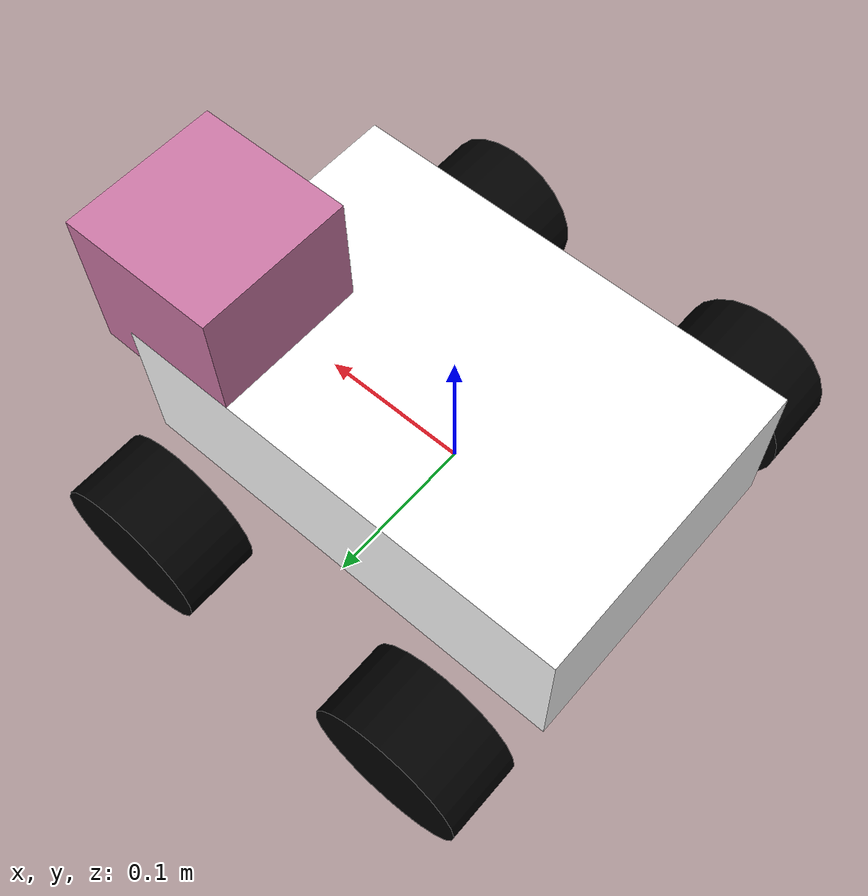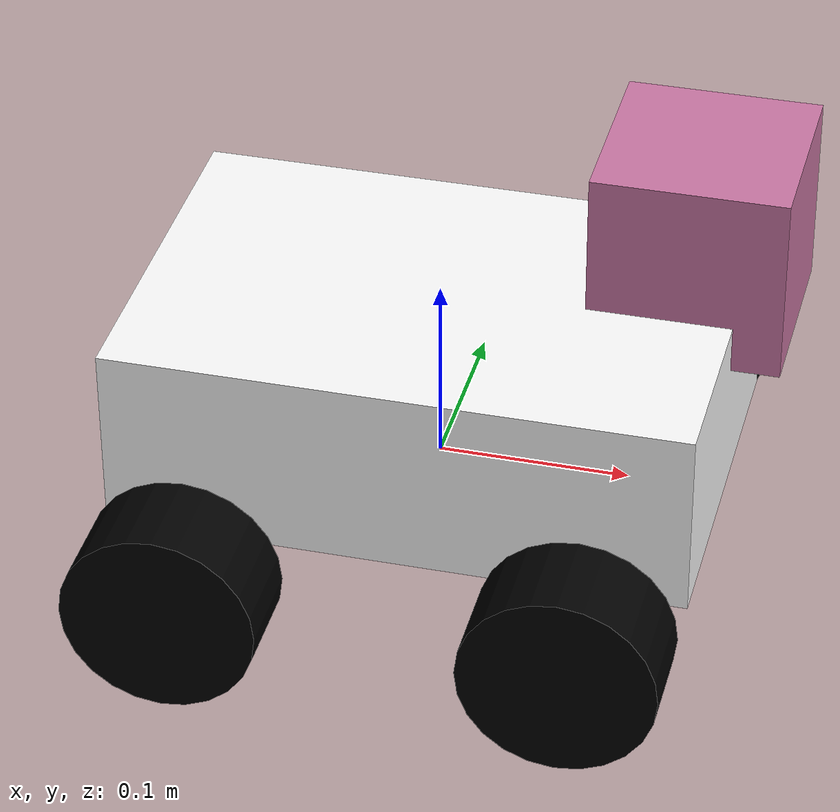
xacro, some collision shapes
<?xml version="1.0"?>
<robot  xmlns:xacro="http://www.ros.org/wiki/xacro"
    xmlns:sensor="http://playerstage.sourceforge.net/gazebo/xmlschema/#sensor"
        xmlns:controller="http://playerstage.sourceforge.net/gazebo/xmlschema/#controller"
        xmlns:interface="http://playerstage.sourceforge.net/gazebo/xmlschema/#interface"
    name="robot1_xacro">
    <xacro:property name="length_wheel" value="0.05" />
    <xacro:property name="radius_wheel" value="0.05" />
    <xacro:macro name="default_inertial" params="mass">
               <inertial>
                       <mass value="${mass}" />
                       <inertia ixx="0.0045" ixy="0" ixz="0" iyy="0.005" iyz="0" izz="0.0045" />
               </inertial>
    </xacro:macro>

    <link name="base_footprint">
        <visual>
            <geometry>
                    <box size="0.001 0.001 0.001"/>
                </geometry>
            <origin rpy="0 0 0" xyz="0 0 0"/>
        </visual>
        <xacro:default_inertial mass="0.0001"/>
    </link>

    <joint name="base_footprint_joint" type="fixed">
        <origin xyz="0 0 0" />
        <parent link="base_footprint" />
        <child link="base_link" />
    </joint>

    <link name="base_link">
        <visual>
            <geometry>
                    <box size="0.2 .3 .1"/>
                </geometry>
            <origin rpy="0 0 1.571" xyz="0 0 0.05"/>
            <material name="white">
                <color rgba="1 1 1 1"/>
            </material>
        </visual>
        <collision>
            <geometry>
                    <box size="0.2 .3 0.1"/>
            </geometry>
        </collision>
        <inertial>
            <mass value="35" />
            <inertia ixx="0.6125" ixy="0.00495" ixz="0.0031" iyy="0.6426" iyz="-0.0017" izz="0.494" />
        </inertial>
    </link>

    <link name="wheel_1">
        <visual>
                <geometry>
                    <cylinder length="${length_wheel}" radius="${radius_wheel}"/>
                </geometry>
            <origin rpy="0 0 0" xyz="0 0 0"/>
            <material name="black">
                <color rgba="0 0 0 1"/>
            </material>
        </visual>
        <collision>
            <geometry>
                    <cylinder length="${length_wheel}" radius="${radius_wheel}"/>
            </geometry>
        </collision>
        <xacro:default_inertial mass="4.3542"/>
    </link>

    <link name="wheel_2">
        <visual>
                <geometry>
                    <cylinder length="${length_wheel}" radius="${radius_wheel}"/>
                </geometry>
            <origin rpy="0 0 0" xyz="0 0 0"/>
            <material name="black"/>
        </visual>
        <collision>
            <geometry>
                    <cylinder length="${length_wheel}" radius="${radius_wheel}"/>
            </geometry>
        </collision>
        <xacro:default_inertial mass="4.3542"/>

    </link>

    <link name="wheel_3">
        <visual>
                <geometry>
                    <cylinder length="${length_wheel}" radius="${radius_wheel}"/>
                </geometry>

            <origin rpy="0 0 0" xyz="0 0 0"/>
            <material name="black"/>
        </visual>
        <collision>
            <geometry>
                    <cylinder length="${length_wheel}" radius="${radius_wheel}"/>
            </geometry>
        </collision>
        <xacro:default_inertial mass="4.3542"/>
    </link>

    <link name="wheel_4">
        <visual>
                <geometry>
                    <cylinder length="${length_wheel}" radius="${radius_wheel}"/>
                </geometry>
            <origin rpy="0 0 0" xyz="0 0 0" />
            <material name="black"/>
        </visual>
        <collision>
            <geometry>
                    <cylinder length="${length_wheel}" radius="${radius_wheel}"/>
            </geometry>
        </collision>
        <xacro:default_inertial mass="4.3542"/>

    </link>

    <link name="hokuyo_link">

        <visual>
            <origin xyz="0 0 0" rpy="0 0 0" />
            <geometry>
                <mesh filename="package://robot1_description/meshes/hokuyo.dae" />
            </geometry>
        </visual>

        <collision>
            <origin xyz="0 0 0" rpy="0 0 0" />
            <geometry>
                <box size="0.1 0.1 0.1" />
            </geometry>
        </collision>

        <inertial>
            <inertia ixx="1e-6" ixy="0" ixz="0" iyy="1e-6" iyz="0" izz="1e-6" />
            <mass value="1e-5" />
            <origin xyz="0 0 0" rpy="0 0 0 " />
        </inertial>

    </link>

    <joint name="base_to_wheel1" type="continuous">
    <parent link="base_link"/>
    <child link="wheel_1"/>
    <origin rpy="-1.5707 0 0" xyz="0.1 0.15 0"/>
    <axis xyz="0 0 1" />
    </joint>

    <joint name="base_to_wheel2" type="continuous">
    <axis xyz="0 0 1" />
    <anchor xyz="0 0 0" />
    <limit effort="100" velocity="100" />
    <parent link="base_link"/>
    <child link="wheel_2"/>
    <origin rpy="-1.5707 0 0" xyz="-0.1 0.15 0"/>
    </joint>

    <joint name="base_to_wheel3" type="continuous">
    <parent link="base_link"/>
    <axis xyz="0 0 1" />
    <child link="wheel_3"/>
    <origin rpy="-1.5707 0 0" xyz="0.1 -0.15 0"/>
    </joint>

    <joint name="base_to_wheel4" type="continuous">
    <parent link="base_link"/>
    <axis xyz="0 0 1" />
    <child link="wheel_4"/>
    <origin rpy="-1.5707 0 0" xyz="-0.1 -0.15 0"/>
    </joint>

    <joint name="base_to_laser" type="fixed">
        <parent link="base_link"/>
        <child link="hokuyo_link"/>
        <axis xyz="0 1 0" />
        <origin xyz="0.125 0.05 0.125" rpy="0 0 0"/>
    </joint>

    <!-- gazebo plugins  -->

    <!-- 1.Drive controller -->
    <gazebo>
        <plugin name="skid_steer_drive_controller" filename="libgazebo_ros_skid_steer_drive.so">
            <updateRate>100.0</updateRate>
            <robotNamespace></robotNamespace>
            <leftFrontJoint>base_to_wheel1</leftFrontJoint>
            <rightFrontJoint>base_to_wheel3</rightFrontJoint>
            <leftRearJoint>base_to_wheel2</leftRearJoint>
            <rightRearJoint>base_to_wheel4</rightRearJoint>
            <wheelSeparation>0.3</wheelSeparation>
            <wheelDiameter>0.1</wheelDiameter>

            <commandTopic>cmd_vel</commandTopic>
            <odometryTopic>odom</odometryTopic>
            <robotBaseFrame>base_footprint</robotBaseFrame>
            <odometryFrame>odom</odometryFrame>
            <torque>15</torque>
            <topicName>cmd_vel</topicName>
            <broadcastTF>1</broadcastTF>

        </plugin>
    </gazebo>

    <!-- 2.ros_control plugin -->
    <gazebo>
        <plugin name="gazebo_ros_control" filename="libgazebo_ros_control.so">
        <robotNamespace>/robot</robotNamespace>

        </plugin>
    </gazebo>

    <!-- 3.laser sensor -->

    <gazebo reference="hokuyo_link">
        <sensor type="ray" name="head_hokuyo_sensor" >
            <pose>0 0 0 0 0 0</pose>
            <visualize>false</visualize>
            <update_rate>40</update_rate>
            <ray>
                <scan>
                    <horizontal>
                        <samples>720</samples>
                        <resolution>1</resolution>
                        <min_angle>-3.14159</min_angle>
                        <max_angle>3.14159</max_angle>
                    </horizontal>
                </scan>
                <range>
                    <min>0.1</min>
                    <max>30</max>
                    <resolution>0.01</resolution>
                </range>
                <noise>
                    <type>gaussian</type>
                    <mean>0.0</mean>
                    <stddev>0.01</stddev>
                </noise>
            </ray>
            <plugin name="gazebo_ros_head_hokuyo_controller" filename="libgazebo_ros_laser.so">
                <topicName>/scan</topicName>
                <frameName>hokuyo_link</frameName>
            </plugin>
        </sensor>
    </gazebo>

    <gazebo reference="base_link">
        <material>Gazebo/Orange</material>
    </gazebo>

    <gazebo reference="wheel_1">
        <material>Gazebo/Black</material>
    </gazebo>

    <gazebo reference="wheel_2">
        <material>Gazebo/Black</material>
    </gazebo>

    <gazebo reference="wheel_3">
        <material>Gazebo/Black</material>
    </gazebo>

    <gazebo reference="wheel_4">
        <material>Gazebo/Black</material>
    </gazebo>

</robot>
